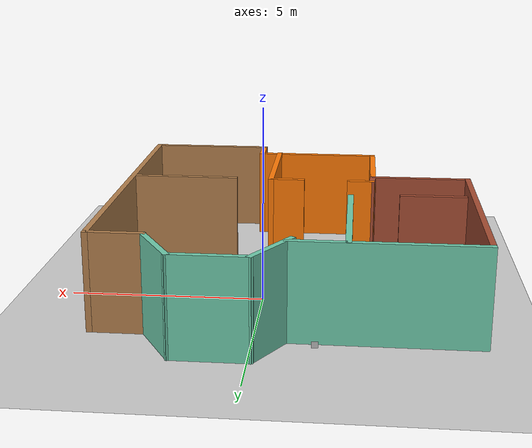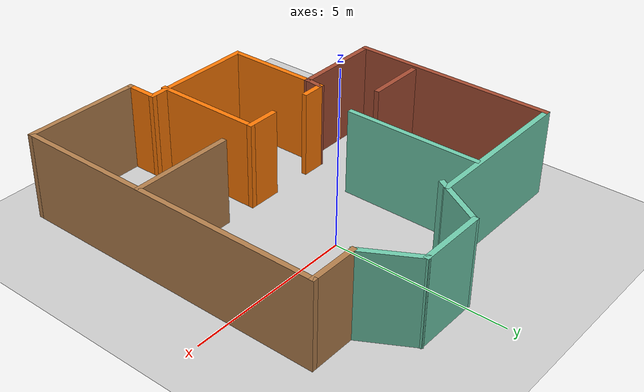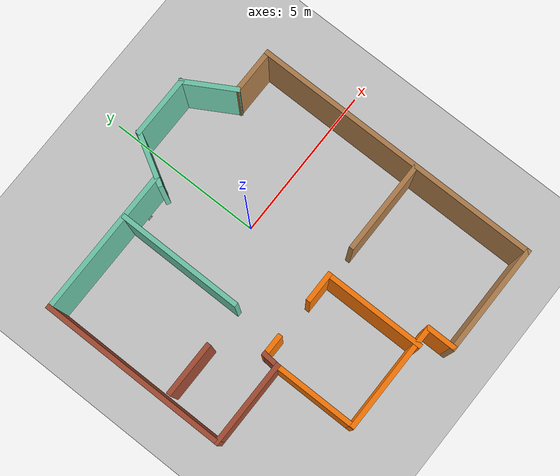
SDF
<sdf version="1.6">
 <world name="default">
  <light name="sun" type="directional">
   <pose>0 0 10 0 -0 0</pose>
   <diffuse>0.8 0.8 0.8 1</diffuse>
   <specular>0.1 0.1 0.1 1</specular>
   <attenuation>
    <range>1000</range>
    <constant>0.9</constant>
    <linear>0.01</linear>
    <quadratic>0.001</quadratic>
   </attenuation>
   <direction>-0.5 0.5 -1</direction>
  </light>
  <model name="ground_plane">
   <static>1</static>
   <link name="link">
    <collision name="collision">
     <geometry><plane><normal>0 0 1</normal><size>100 100</size></plane></geometry>
     <surface><friction><ode><mu>100</mu><mu2>50</mu2></ode></friction></surface>
    </collision>
    <visual name="visual">
     <cast_shadows>0</cast_shadows>
     <geometry><plane><normal>0 0 1</normal><size>100 100</size></plane></geometry>
     <material>
      <script><uri>file://media/materials/scripts/gazebo.material</uri><name>Gazebo/Grey</name></script>
     </material>
    </visual>
   </link>
  </model>
  <gravity>0 0 -9.8</gravity>
  <magnetic_field>6e-06 2.3e-05 -4.2e-05</magnetic_field>
  <atmosphere type="adiabatic"/>
  <physics name="default_physics" default="0" type="ode">
   <max_step_size>0.001</max_step_size>
   <real_time_factor>1</real_time_factor>
   <real_time_update_rate>1000</real_time_update_rate>
  </physics>
  <scene><ambient>0.4 0.4 0.4 1</ambient><background>0.7 0.7 0.7 1</background><shadows>1</shadows></scene>
  <spherical_coordinates>
   <surface_model>EARTH_WGS84</surface_model>
   <latitude_deg>0</latitude_deg>
   <longitude_deg>0</longitude_deg>
   <elevation>0</elevation>
   <heading_deg>0</heading_deg>
  </spherical_coordinates>
  <model name="template">
   <pose>-0.726132 -1.41699 0 0 -0 0</pose>
   <link name="Wall_10">
    <collision name="Wall_10_Collision">
     <geometry><box><size>1 0.15 2.5</size></box></geometry>
     <pose>0 0 1.25 0 -0 0</pose>
    </collision>
    <visual name="Wall_10_Visual">
     <pose>0 0 1.25 0 -0 0</pose>
     <geometry><box><size>1 0.15 2.5</size></box></geometry>
     <material>
      <script><uri>file://media/materials/scripts/gazebo.material</uri><name>Gazebo/Grey</name></script>
      <ambient>0.996078 0.47451 0.0196078 1</ambient>
     </material>
    </visual>
    <pose>1.3 -4.83155 0 0 -0 1.5708</pose>
   </link>
   <link name="Wall_11">
    <collision name="Wall_11_Collision">
     <geometry><box><size>3.5 0.15 2.5</size></box></geometry>
     <pose>0 0 1.25 0 -0 0</pose>
    </collision>
    <visual name="Wall_11_Visual">
     <pose>0 0 1.25 0 -0 0</pose>
     <geometry><box><size>3.5 0.15 2.5</size></box></geometry>
     <material>
      <script><uri>file://media/materials/scripts/gazebo.material</uri><name>Gazebo/Grey</name></script>
      <ambient>0.996078 0.47451 0.0196078 1</ambient>
     </material>
    </visual>
    <pose>-0.375 -4.40655 0 0 -0 3.14159</pose>
   </link>
   <link name="Wall_12">
    <collision name="Wall_12_Collision">
     <geometry><box><size>2.75 0.15 2.5</size></box></geometry>
     <pose>0 0 1.25 0 -0 0</pose>
    </collision>
    <visual name="Wall_12_Visual">
     <pose>0 0 1.25 0 -0 0</pose>
     <geometry><box><size>2.75 0.15 2.5</size></box></geometry>
     <material>
      <script><uri>file://media/materials/scripts/gazebo.material</uri><name>Gazebo/Grey</name></script>
      <ambient>0.996078 0.47451 0.0196078 1</ambient>
     </material>
    </visual>
    <pose>-2.05 -3.10655 0 0 -0 1.5708</pose>
   </link>
   <link name="Wall_13">
    <collision name="Wall_13_Collision">
     <geometry><box><size>2.75 0.15 2.5</size></box></geometry>
     <pose>0 0 1.25 0 -0 0</pose>
    </collision>
    <visual name="Wall_13_Visual">
     <pose>0 0 1.25 0 -0 0</pose>
     <geometry><box><size>2.75 0.15 2.5</size></box></geometry>
     <material>
      <script><uri>file://media/materials/scripts/gazebo.material</uri><name>Gazebo/Bricks</name></script>
      <ambient>1 1 1 1</ambient>
     </material>
    </visual>
    <pose>-3.35 -1.80655 0 0 -0 3.14159</pose>
   </link>
   <link name="Wall_14">
    <collision name="Wall_14_Collision">
     <geometry><box><size>6 0.15 2.5</size></box></geometry>
     <pose>0 0 1.25 0 -0 0</pose>
    </collision>
    <visual name="Wall_14_Visual">
     <pose>0 0 1.25 0 -0 0</pose>
     <geometry><box><size>6 0.15 2.5</size></box></geometry>
     <material>
      <script><uri>file://media/materials/scripts/gazebo.material</uri><name>Gazebo/Bricks</name></script>
      <ambient>1 1 1 1</ambient>
     </material>
    </visual>
    <pose>-4.65 1.11845 0 0 -0 1.5708</pose>
   </link>
   <link name="Wall_15">
    <collision name="Wall_15_Collision">
     <geometry><box><size>4.75 0.15 2.5</size></box></geometry>
     <pose>0 0 1.25 0 -0 0</pose>
    </collision>
    <visual name="Wall_15_Visual">
     <pose>0 0 1.25 0 -0 0</pose>
     <geometry><box><size>4.75 0.15 2.5</size></box></geometry>
     <material>
      <script><uri>file://media/materials/scripts/gazebo.material</uri><name>Gazebo/Grey</name></script>
      <ambient>0.435294 0.796078 0.67451 1</ambient>
     </material>
    </visual>
    <pose>-2.35 4.04345 0 0 -0 0</pose>
   </link>
   <link name="Wall_17">
    <collision name="Wall_17_Collision">
     <geometry><box><size>4 0.15 2.5</size></box></geometry>
     <pose>0 0 1.25 0 -0 0</pose>
    </collision>
    <visual name="Wall_17_Visual">
     <pose>0 0 1.25 0 -0 0</pose>
     <geometry><box><size>4 0.15 2.5</size></box></geometry>
     <material>
      <script><uri>file://media/materials/scripts/gazebo.material</uri><name>Gazebo/Grey</name></script>
      <ambient>0.435294 0.796078 0.67451 1</ambient>
     </material>
    </visual>
    <pose>-1.44945 2.08471 0 0 0 -1.5708</pose>
   </link>
   <link name="Wall_19">
    <collision name="Wall_19_Collision">
     <geometry><box><size>1.75 0.15 2.5</size></box></geometry>
     <pose>0 0 1.25 0 -0 0</pose>
    </collision>
    <visual name="Wall_19_Visual">
     <pose>0 0 1.25 0 -0 0</pose>
     <geometry><box><size>1.75 0.15 2.5</size></box></geometry>
     <material>
      <script><uri>file://media/materials/scripts/gazebo.material</uri><name>Gazebo/Bricks</name></script>
      <ambient>1 1 1 1</ambient>
     </material>
    </visual>
    <pose>-3.59986 0.010817 0 0 -0 0</pose>
   </link>
   <link name="Wall_21">
    <collision name="Wall_21_Collision">
     <geometry><box><size>3.25 0.15 2.5</size></box></geometry>
     <pose>0 0 1.25 0 -0 0</pose>
    </collision>
    <visual name="Wall_21_Visual">
     <pose>0 0 1.25 0 -0 0</pose>
     <geometry><box><size>3.25 0.15 2.5</size></box></geometry>
     <material>
      <script><uri>file://media/materials/scripts/gazebo.material</uri><name>Gazebo/Grey</name></script>
      <ambient>0.996078 0.47451 0.0196078 1</ambient>
     </material>
    </visual>
    <pose>0.769445 -2.92575 0 0 -0 1.5708</pose>
   </link>
   <link name="Wall_22">
    <collision name="Wall_22_Collision">
     <geometry><box><size>1 0.15 2.5</size></box></geometry>
     <pose>0 0 1.25 0 -0 0</pose>
    </collision>
    <visual name="Wall_22_Visual">
     <pose>0 0 1.25 0 -0 0</pose>
     <geometry><box><size>1 0.15 2.5</size></box></geometry>
     <material>
      <script><uri>file://media/materials/scripts/gazebo.material</uri><name>Gazebo/Grey</name></script>
      <ambient>0.996078 0.47451 0.0196078 1</ambient>
     </material>
    </visual>
    <pose>0.344445 -1.37575 0 0 -0 3.14159</pose>
   </link>
   <link name="Wall_24">
    <collision name="Wall_24_Collision">
     <geometry><box><size>0.75 0.15 2.5</size></box></geometry>
     <pose>0 0 1.25 0 -0 0</pose>
    </collision>
    <visual name="Wall_24_Visual">
     <pose>0 0 1.25 0 -0 0</pose>
     <geometry><box><size>0.75 0.15 2.5</size></box></geometry>
     <material>
      <script><uri>file://media/materials/scripts/gazebo.material</uri><name>Gazebo/Grey</name></script>
      <ambient>0.996078 0.47451 0.0196078 1</ambient>
     </material>
    </visual>
    <pose>-1.71028 -1.35466 0 0 -0 0</pose>
   </link>
   <link name="Wall_26">
    <collision name="Wall_26_Collision">
     <geometry><box><size>0.603629 0.15 2.5</size></box></geometry>
     <pose>0 0 1.25 0 -0 0</pose>
    </collision>
    <visual name="Wall_26_Visual">
     <pose>0 0 1.25 0 -0 0</pose>
     <geometry><box><size>0.603629 0.15 2.5</size></box></geometry>
     <material>
      <script><uri>file://media/materials/scripts/gazebo.material</uri><name>Gazebo/Bricks</name></script>
      <ambient>1 1 1 1</ambient>
     </material>
    </visual>
    <pose>-2.03014 -1.5806 0 0 0 -1.65848</pose>
   </link>
   <link name="Wall_28">
    <collision name="Wall_28_Collision">
     <geometry><box><size>3 0.15 2.5</size></box></geometry>
     <pose>0 0 1.25 0 -0 0</pose>
    </collision>
    <visual name="Wall_28_Visual">
     <pose>0 0 1.25 0 -0 0</pose>
     <geometry><box><size>3 0.15 2.5</size></box></geometry>
     <material>
      <script><uri>file://media/materials/scripts/gazebo.material</uri><name>Gazebo/Wood</name></script>
      <ambient>1 1 1 1</ambient>
     </material>
    </visual>
    <pose>3.21855 -1.40343 0 0 -0 0</pose>
   </link>
   <link name="Wall_4">
    <collision name="Wall_4_Collision">
     <geometry><box><size>1.75 0.15 2.5</size></box></geometry>
     <pose>0 0 1.25 0 -0 0</pose>
    </collision>
    <visual name="Wall_4_Visual">
     <pose>0 0 1.25 0 -0 0</pose>
     <geometry><box><size>1.75 0.15 2.5</size></box></geometry>
     <material>
      <script><uri>file://media/materials/scripts/gazebo.material</uri><name>Gazebo/Grey</name></script>
      <ambient>0.435294 0.796078 0.67451 1</ambient>
     </material>
    </visual>
    <pose>0.25 4.53627 0 0 -0 1.0472</pose>
   </link>
   <link name="Wall_5">
    <collision name="Wall_5_Collision">
     <geometry><box><size>2 0.15 2.5</size></box></geometry>
     <pose>0 0 1.25 0 -0 0</pose>
    </collision>
    <visual name="Wall_5_Visual">
     <pose>0 0 1.25 0 -0 0</pose>
     <geometry><box><size>2 0.15 2.5</size></box></geometry>
     <material>
      <script><uri>file://media/materials/scripts/gazebo.material</uri><name>Gazebo/Grey</name></script>
      <ambient>0.435294 0.796078 0.67451 1</ambient>
     </material>
    </visual>
    <pose>1.575 5.2291 0 0 -0 0</pose>
   </link>
   <link name="Wall_6">
    <collision name="Wall_6_Collision">
     <geometry><box><size>1.75 0.15 2.5</size></box></geometry>
     <pose>0 0 1.25 0 -0 0</pose>
    </collision>
    <visual name="Wall_6_Visual">
     <pose>0 0 1.25 0 -0 0</pose>
     <geometry><box><size>1.75 0.15 2.5</size></box></geometry>
     <material>
      <script><uri>file://media/materials/scripts/gazebo.material</uri><name>Gazebo/Grey</name></script>
      <ambient>0.435294 0.796078 0.67451 1</ambient>
     </material>
    </visual>
    <pose>2.9 4.53627 0 0 0 -1.0472</pose>
   </link>
   <link name="Wall_7">
    <collision name="Wall_7_Collision">
     <geometry><box><size>1.5 0.15 2.5</size></box></geometry>
     <pose>0 0 1.25 0 -0 0</pose>
    </collision>
    <visual name="Wall_7_Visual">
     <pose>0 0 1.25 0 -0 0</pose>
     <geometry><box><size>1.5 0.15 2.5</size></box></geometry>
     <material>
      <script><uri>file://media/materials/scripts/gazebo.material</uri><name>Gazebo/Wood</name></script>
      <ambient>1 1 1 1</ambient>
     </material>
    </visual>
    <pose>3.975 3.84345 0 0 -0 0</pose>
   </link>
   <link name="Wall_8">
    <collision name="Wall_8_Collision">
     <geometry><box><size>9.25 0.15 2.5</size></box></geometry>
     <pose>0 0 1.25 0 -0 0</pose>
    </collision>
    <visual name="Wall_8_Visual">
     <pose>0 0 1.25 0 -0 0</pose>
     <geometry><box><size>9.25 0.15 2.5</size></box></geometry>
     <material>
      <script><uri>file://media/materials/scripts/gazebo.material</uri><name>Gazebo/Wood</name></script>
      <ambient>1 1 1 1</ambient>
     </material>
    </visual>
    <pose>4.65 -0.706546 0 0 0 -1.5708</pose>
   </link>
   <link name="Wall_9">
    <collision name="Wall_9_Collision">
     <geometry><box><size>3.5 0.15 2.5</size></box></geometry>
     <pose>0 0 1.25 0 -0 0</pose>
    </collision>
    <visual name="Wall_9_Visual">
     <pose>0 0 1.25 0 -0 0</pose>
     <geometry><box><size>3.5 0.15 2.5</size></box></geometry>
     <material>
      <script><uri>file://media/materials/scripts/gazebo.material</uri><name>Gazebo/Wood</name></script>
      <ambient>1 1 1 1</ambient>
     </material>
    </visual>
    <pose>2.975 -5.25655 0 0 -0 3.14159</pose>
   </link>
   <static>1</static>
  </model>
  <model name="Tag0">
   <static>1</static>
   <link name="link">
    <pose>0 0 0.1 0 -0 0</pose>
    <collision name="collision"><geometry><box><size>0.1615 0.001 0.1615</size></box></geometry></collision>
    <visual name="visual">
     <cast_shadows>0</cast_shadows>
     <geometry><box><size>0.1615 0.001 0.1615</size></box></geometry>
     <material>
      <script>
       <uri>model://Tag0/materials/scripts</uri>
       <uri>model://Tag0/materials/textures</uri>
       <name>vrc/Tag0</name>
      </script>
     </material>
    </visual>
   </link>
   <pose>-1.46333 2.94446 0 0 -0 0</pose>
  </model>
  <model name="Tag2">
   <static>1</static>
   <link name="link">
    <pose>0 0 0.1 0 1.57 0</pose>
    <collision name="collision"><geometry><box><size>0.1615 0.001 0.1615</size></box></geometry></collision>
    <visual name="visual">
     <cast_shadows>0</cast_shadows>
     <geometry><box><size>0.1615 0.001 0.1615</size></box></geometry>
     <material>
      <script>
       <uri>model://Tag2/materials/scripts</uri>
       <uri>model://Tag2/materials/textures</uri>
       <name>vrc/Tag2</name>
      </script>
     </material>
    </visual>
   </link>
   <pose>-1.58328 2.49795 0 0 -0 0</pose>
  </model>
 </world>
</sdf>
